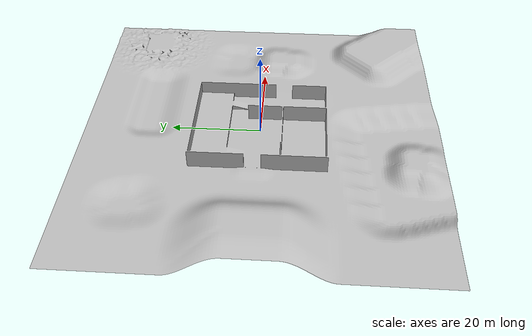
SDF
<?xml version="1.0" ?>
<sdf version="1.5">
  <model name="simple_uneven_house">
    <pose>0 0 0 0 0 0</pose>
    <static>true</static>
    <link name="body">
      <visual name="visual">
        <geometry>
          <mesh><uri>model://simple_uneven_house/media/simple_uneven_house.dae</uri></mesh>
        </geometry>
	      <material>
          <script>
            <uri>model://simple_uneven_house/media/scripts</uri>
            <uri>model://simple_uneven_house/media/Textures</uri>
            <name>RepeatedConcrete/Diffuse</name>
          </script>
        </material>
      </visual>
      <collision name="collision">
        <geometry>
          <mesh><uri>model://simple_uneven_house/media/simple_uneven_house.dae</uri></mesh>
        </geometry>
      </collision>
    </link>
  </model>
</sdf>
